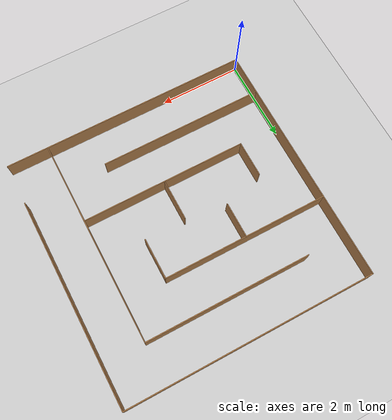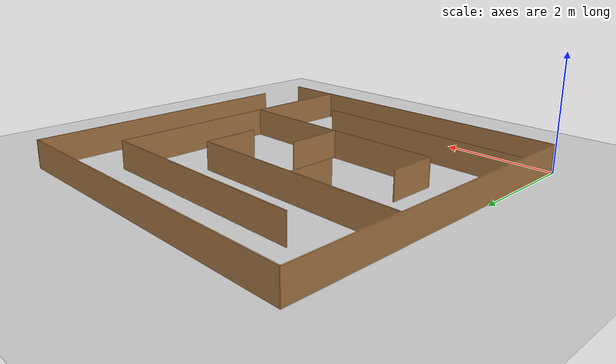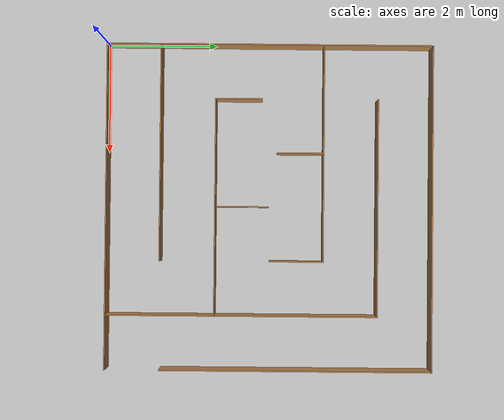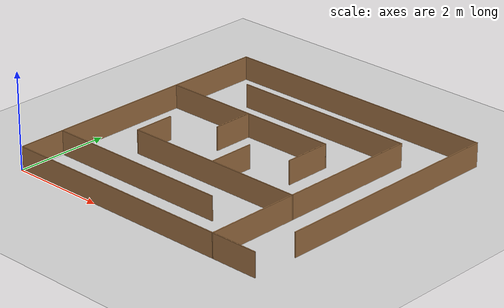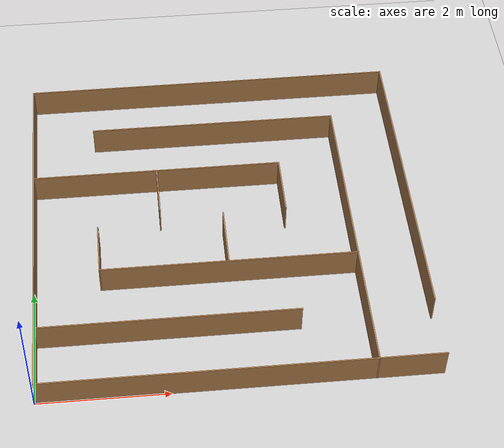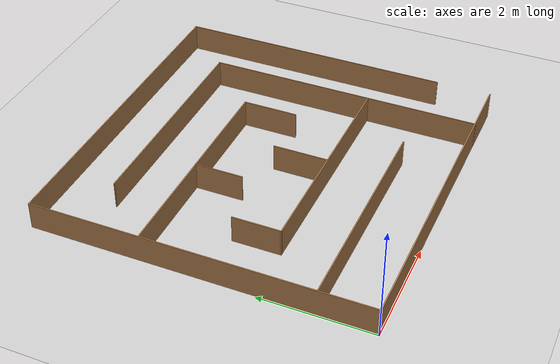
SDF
<sdf version="1.6">
 <world name="default">
  <light name="sun" type="directional">
   <pose>0 0 10 0 -0 0</pose>
   <diffuse>0.8 0.8 0.8 1</diffuse>
   <specular>0.2 0.2 0.2 1</specular>
   <attenuation>
    <range>1000</range>
    <constant>0.9</constant>
    <linear>0.01</linear>
    <quadratic>0.001</quadratic>
   </attenuation>
   <direction>-0.5 0.1 -0.9</direction>
  </light>
  <model name="ground_plane">
   <static>1</static>
   <link name="link">
    <collision name="collision">
     <geometry><plane><normal>0 0 1</normal><size>100 100</size></plane></geometry>
     <surface>
      <contact><collide_bitmask>65535</collide_bitmask></contact>
      <friction><ode><mu>100</mu><mu2>50</mu2></ode></friction>
     </surface>
    </collision>
    <visual name="visual">
     <cast_shadows>0</cast_shadows>
     <geometry><plane><normal>0 0 1</normal><size>100 100</size></plane></geometry>
     <material>
      <script><uri>file://media/materials/scripts/gazebo.material</uri><name>Gazebo/Grey</name></script>
     </material>
    </visual>
   </link>
  </model>
  <gravity>0 0 -9.8</gravity>
  <magnetic_field>6e-06 2.3e-05 -4.2e-05</magnetic_field>
  <atmosphere type="adiabatic"/>
  <physics name="default_physics" default="0" type="ode">
   <max_step_size>0.001</max_step_size>
   <real_time_factor>1</real_time_factor>
   <real_time_update_rate>1000</real_time_update_rate>
  </physics>
  <scene><ambient>0.4 0.4 0.4 1</ambient><background>0.7 0.7 0.7 1</background><shadows>1</shadows></scene>
  <audio><device>default</device></audio>
  <spherical_coordinates>
   <surface_model>EARTH_WGS84</surface_model>
   <latitude_deg>0</latitude_deg>
   <longitude_deg>0</longitude_deg>
   <elevation>0</elevation>
   <heading_deg>0</heading_deg>
  </spherical_coordinates>
  <model name="Circuite2">
   <pose>3.02137 3.00166 0 0 -0 0</pose>
   <link name="Wall_10">
    <collision name="Wall_10_Collision">
     <geometry><box><size>6 0.02 0.5</size></box></geometry>
     <pose>0 0 0.25 0 -0 0</pose>
    </collision>
    <visual name="Wall_10_Visual">
     <pose>0 0 0.25 0 -0 0</pose>
     <geometry><box><size>6 0.02 0.5</size></box></geometry>
     <material>
      <script><uri>file://media/materials/scripts/gazebo.material</uri><name>Gazebo/Wood</name></script>
      <ambient>1 1 1 1</ambient>
     </material>
     <meta><layer>0</layer></meta>
    </visual>
    <pose>-0.000633 -2.99006 0 0 -0 3.14159</pose>
   </link>
   <link name="Wall_12">
    <collision name="Wall_12_Collision">
     <geometry><box><size>6 0.02 0.5</size></box></geometry>
     <pose>0 0 0.25 0 -0 0</pose>
    </collision>
    <visual name="Wall_12_Visual">
     <pose>0 0 0.25 0 -0 0</pose>
     <geometry><box><size>6 0.02 0.5</size></box></geometry>
     <material>
      <script><uri>file://media/materials/scripts/gazebo.material</uri><name>Gazebo/Wood</name></script>
      <ambient>1 1 1 1</ambient>
     </material>
     <meta><layer>0</layer></meta>
    </visual>
    <pose>-2.98997 4.8e-05 0 0 -0 -1.5708</pose>
   </link>
   <link name="Wall_14">
    <collision name="Wall_14_Collision">
     <geometry><box><size>6 0.02 0.5</size></box></geometry>
     <pose>0 0 0.25 0 -0 0</pose>
    </collision>
    <visual name="Wall_14_Visual">
     <pose>0 0 0.25 0 -0 0</pose>
     <geometry><box><size>6 0.02 0.5</size></box></geometry>
     <material>
      <script><uri>file://media/materials/scripts/gazebo.material</uri><name>Gazebo/Wood</name></script>
      <ambient>1 1 1 1</ambient>
     </material>
     <meta><layer>0</layer></meta>
    </visual>
    <pose>0.000566 2.99051 0 0 -0 0.000186</pose>
   </link>
   <link name="Wall_16">
    <collision name="Wall_16_Collision">
     <geometry><box><size>5 0.02 0.5</size></box></geometry>
     <pose>0 0 0.25 0 -0 0</pose>
    </collision>
    <visual name="Wall_16_Visual">
     <pose>0 0 0.25 0 -0 0</pose>
     <geometry><box><size>5 0.02 0.5</size></box></geometry>
     <material>
      <script><uri>file://media/materials/scripts/gazebo.material</uri><name>Gazebo/Wood</name></script>
      <ambient>1 1 1 1</ambient>
     </material>
     <meta><layer>0</layer></meta>
    </visual>
    <pose>2.99063 0.50107 0 0 -0 -1.5708</pose>
   </link>
   <link name="Wall_18">
    <collision name="Wall_18_Collision">
     <geometry><box><size>5 0.02 0.5</size></box></geometry>
     <pose>0 0 0.25 0 -0 0</pose>
    </collision>
    <visual name="Wall_18_Visual">
     <pose>0 0 0.25 0 -0 0</pose>
     <geometry><box><size>5 0.02 0.5</size></box></geometry>
     <material>
      <script><uri>file://media/materials/scripts/gazebo.material</uri><name>Gazebo/Wood</name></script>
      <ambient>1 1 1 1</ambient>
     </material>
     <meta><layer>0</layer></meta>
    </visual>
    <pose>1.99036 -0.501072 0 0 -0 1.5708</pose>
   </link>
   <link name="Wall_20">
    <collision name="Wall_20_Collision">
     <geometry><box><size>4 0.02 0.5</size></box></geometry>
     <pose>0 0 0.25 0 -0 0</pose>
    </collision>
    <visual name="Wall_20_Visual">
     <pose>0 0 0.25 0 -0 0</pose>
     <geometry><box><size>4 0.02 0.5</size></box></geometry>
     <material>
      <script><uri>file://media/materials/scripts/gazebo.material</uri><name>Gazebo/Wood</name></script>
      <ambient>1 1 1 1</ambient>
     </material>
     <meta><layer>0</layer></meta>
    </visual>
    <pose>-0.999408 -2.00245 0 0 -0 0</pose>
   </link>
   <link name="Wall_22">
    <collision name="Wall_22_Collision">
     <geometry><box><size>4 0.02 0.5</size></box></geometry>
     <pose>0 0 0.25 0 -0 0</pose>
    </collision>
    <visual name="Wall_22_Visual">
     <pose>0 0 0.25 0 -0 0</pose>
     <geometry><box><size>4 0.02 0.5</size></box></geometry>
     <material>
      <script><uri>file://media/materials/scripts/gazebo.material</uri><name>Gazebo/Wood</name></script>
      <ambient>1 1 1 1</ambient>
     </material>
     <meta><layer>0</layer></meta>
    </visual>
    <pose>0.000707 -0.993001 0 0 -0 3.14159</pose>
   </link>
   <link name="Wall_24">
    <collision name="Wall_24_Collision">
     <geometry><box><size>4 0.02 0.5</size></box></geometry>
     <pose>0 0 0.25 0 -0 0</pose>
    </collision>
    <visual name="Wall_24_Visual">
     <pose>0 0 0.25 0 -0 0</pose>
     <geometry><box><size>4 0.02 0.5</size></box></geometry>
     <material>
      <script><uri>file://media/materials/scripts/gazebo.material</uri><name>Gazebo/Wood</name></script>
      <ambient>1 1 1 1</ambient>
     </material>
     <meta><layer>0</layer></meta>
    </visual>
    <pose>-0.999243 0.994485 0 0 -0 3.14159</pose>
   </link>
   <link name="Wall_26">
    <collision name="Wall_26_Collision">
     <geometry><box><size>0.87 0.02 0.5</size></box></geometry>
     <pose>0 0 0.25 0 -0 0</pose>
    </collision>
    <visual name="Wall_26_Visual">
     <pose>0 0 0.25 0 -0 0</pose>
     <geometry><box><size>0.87 0.02 0.5</size></box></geometry>
     <material>
      <script><uri>file://media/materials/scripts/gazebo.material</uri><name>Gazebo/Wood</name></script>
      <ambient>1 1 1 1</ambient>
     </material>
     <meta><layer>0</layer></meta>
    </visual>
    <pose>-1.98922 -0.568016 0 0 -0 -1.5708</pose>
   </link>
   <link name="Wall_28">
    <collision name="Wall_28_Collision">
     <geometry><box><size>0.87 0.02 0.5</size></box></geometry>
     <pose>0 0 0.25 0 -0 0</pose>
    </collision>
    <visual name="Wall_28_Visual">
     <pose>0 0 0.25 0 -0 0</pose>
     <geometry><box><size>0.87 0.02 0.5</size></box></geometry>
     <material>
      <script><uri>file://media/materials/scripts/gazebo.material</uri><name>Gazebo/Wood</name></script>
      <ambient>1 1 1 1</ambient>
     </material>
     <meta><layer>0</layer></meta>
    </visual>
    <pose>-0.999171 0.568156 0 0 -0 -1.5708</pose>
   </link>
   <link name="Wall_30">
    <collision name="Wall_30_Collision">
     <geometry><box><size>1 0.02 0.5</size></box></geometry>
     <pose>0 0 0.25 0 -0 0</pose>
    </collision>
    <visual name="Wall_30_Visual">
     <pose>0 0 0.25 0 -0 0</pose>
     <geometry><box><size>1 0.02 0.5</size></box></geometry>
     <material>
      <script><uri>file://media/materials/scripts/gazebo.material</uri><name>Gazebo/Wood</name></script>
      <ambient>1 1 1 1</ambient>
     </material>
     <meta><layer>0</layer></meta>
    </visual>
    <pose>0.990167 0.503729 0 0 -0 -1.5708</pose>
   </link>
   <link name="Wall_32">
    <collision name="Wall_32_Collision">
     <geometry><box><size>1 0.02 0.5</size></box></geometry>
     <pose>0 0 0.25 0 -0 0</pose>
    </collision>
    <visual name="Wall_32_Visual">
     <pose>0 0 0.25 0 -0 0</pose>
     <geometry><box><size>1 0.02 0.5</size></box></geometry>
     <material>
      <script><uri>file://media/materials/scripts/gazebo.material</uri><name>Gazebo/Wood</name></script>
      <ambient>1 1 1 1</ambient>
     </material>
     <meta><layer>0</layer></meta>
    </visual>
    <pose>-0.008514 -0.502701 0 0 -0 -1.5708</pose>
   </link>
   <link name="Wall_34">
    <collision name="Wall_34_Collision">
     <geometry><box><size>4 0.02 0.5</size></box></geometry>
     <pose>0 0 0.25 0 -0 0</pose>
    </collision>
    <visual name="Wall_34_Visual">
     <pose>0 0 0.25 0 -0 0</pose>
     <geometry><box><size>4 0.02 0.5</size></box></geometry>
     <material>
      <script><uri>file://media/materials/scripts/gazebo.material</uri><name>Gazebo/Wood</name></script>
      <ambient>1 1 1 1</ambient>
     </material>
     <meta><layer>0</layer></meta>
    </visual>
    <pose>0.000131 1.98916 0 0 -0 3.14159</pose>
   </link>
   <static>1</static>
  </model>
 </world>
</sdf>
